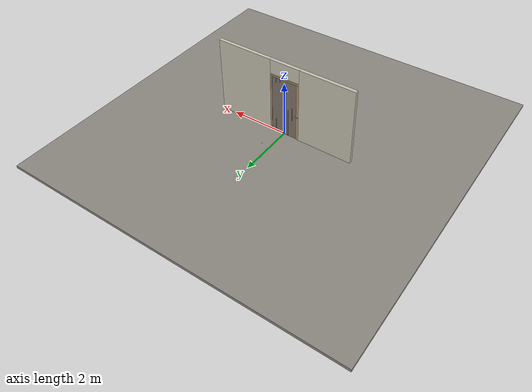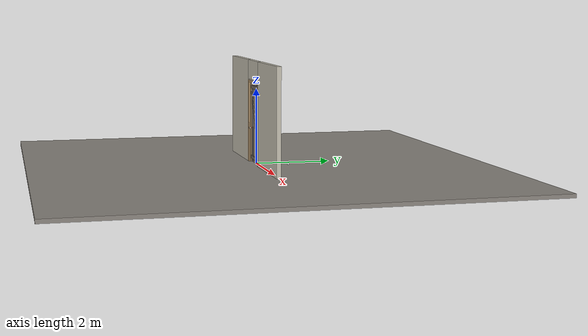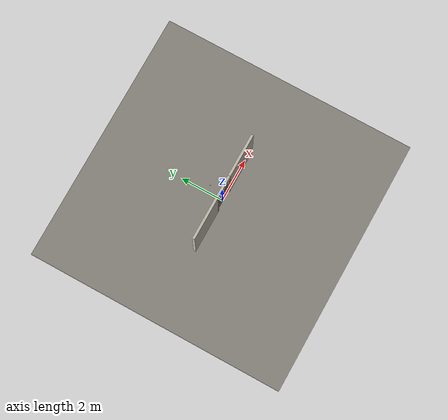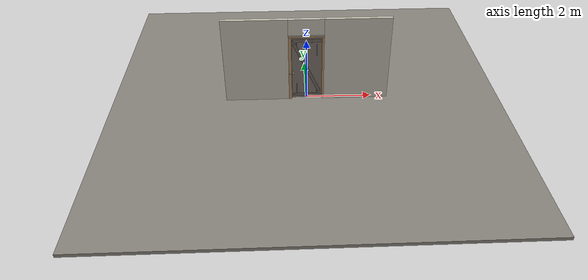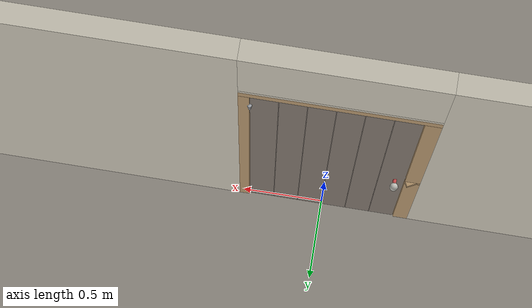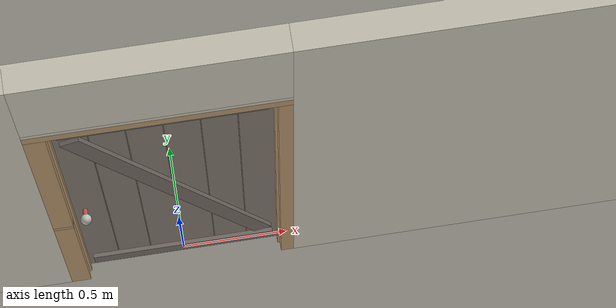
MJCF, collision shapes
<?xml version="1.0" ?>
<mujoco model="db0705_swing_single_full">
  <compiler angle="radian" meshdir="../../hardware" texturedir="../../textures" autolimits="true" inertiafromgeom="false"/>
  <option timestep="0.002" integrator="implicitfast" cone="elliptic" impratio="10" noslip_iterations="3">
    <flag multiccd="enable"/>
  </option>
  <size memory="16M"/>
  <default>
    <geom condim="4" solref="0.005 1" solimp="0.95 0.99 0.001"/>
    <joint solreflimit="0.005 1" solimplimit="0.95 0.99 0.001"/>
    <tendon solreflimit="0.005 1"/>
    <equality solref="0.002 1"/>
  </default>
  <visual>
    <headlight ambient="0.4 0.4 0.4" diffuse="0.7 0.7 0.7" specular="0.2 0.2 0.2"/>
    <quality shadowsize="4096"/>
    <map znear="0.01" zfar="60"/>
  </visual>
  <asset>
    <mesh name="knob_0ccd68d739" file="knob_0ccd68d739.obj"/>
    <mesh name="peephole_f829311a59" file="peephole_f829311a59.obj"/>
    <mesh name="strap_hinge_118b895b75" file="strap_hinge_118b895b75.obj"/>
    <material name="mat_floor" rgba="0.55 0.53 0.5 1" specular="0.2" shininess="0.15" reflectance="0"/>
    <material name="mat_wall" rgba="0.78 0.76 0.7 1" specular="0.2" shininess="0.1" reflectance="0"/>
    <material name="mat_leaf" rgba="0.5 0.46 0.425 1" specular="0.2" shininess="0.15" reflectance="0"/>
    <material name="mat_leaf_brace" rgba="0.45 0.414 0.383 1" specular="0.2" shininess="0.2" reflectance="0"/>
    <material name="mat_hinge" rgba="0.65 0.66 0.68 1" specular="0.74" shininess="0.5" reflectance="0.36"/>
    <material name="mat_op_hpl" rgba="0.75 0.75 0.72 1" specular="0.2" shininess="0.65" reflectance="0"/>
    <material name="mat_trim" rgba="0.85 0.66 0.3 1" specular="0.8" shininess="0.75" reflectance="0.4"/>
    <material name="mat_bolt" rgba="0.75 0.76 0.77 1" specular="0.8" shininess="0.65" reflectance="0.4"/>
    <material name="mat_frame" rgba="0.7 0.58 0.42 1" specular="0.2" shininess="0.5" reflectance="0"/>
    <material name="mat_peephole" rgba="0.85 0.66 0.3 1" specular="0.8" shininess="0.75" reflectance="0.4"/>
    <material name="mat_stop" rgba="0.9 0.9 0.92 1" specular="0.8" shininess="0.9" reflectance="0.4"/>
    <texture name="skybox" type="skybox" builtin="gradient" rgb1="0.6 0.7 0.85" rgb2="0.9 0.92 0.95" width="256" height="256"/>
  </asset>
  <worldbody>
    <light name="sun" pos="1.5 -2.5 4" dir="-0.3 0.5 -0.8" directional="true" diffuse="0.8 0.8 0.8" specular="0.3 0.3 0.3" castshadow="true"/>
    <light name="fill" pos="-1.5 2.5 3" dir="0.3 -0.5 -0.7" directional="true" diffuse="0.35 0.35 0.4" castshadow="false"/>
    <camera name="robot_view" pos="0 -2.670812 1.812087" xyaxes="1 0 0 0 0.26963 0.962964" fovy="52"/>
    <camera name="far_view" pos="0 2.604812 1.812087" xyaxes="-1 0 0 0 -0.26963 0.962964" fovy="52"/>
    <camera name="iso" pos="-2.004737 -2.248762 2.234138" xyaxes="0.741536 -0.670913 0 0.242917 0.268487 0.932151" fovy="46"/>
    <camera name="detail_handle" pos="-0.2215 -0.86375 1.194" xyaxes="0.97561 0.219512 0 -0.070934 0.315262 0.94635" fovy="38"/>
    <geom name="floor" type="box" size="6 6 0.05" pos="0 0 -0.05" material="mat_floor" group="0" contype="1" conaffinity="1" friction="0.8 0.005 0.0001" density="2400"/>
    <geom name="wall_left" type="box" size="0.97475 0.0575 1.3735" pos="-1.52525 -0.033 1.3735" material="mat_wall" group="0" contype="1" conaffinity="1" friction="0.6 0.005 0.0001" density="800"/>
    <geom name="wall_right" type="box" size="0.98975 0.0575 1.3735" pos="1.51025 -0.033 1.3735" material="mat_wall" group="0" contype="1" conaffinity="1" friction="0.6 0.005 0.0001" density="800"/>
    <geom name="wall_header" type="box" size="0.5355 0.0575 0.255" pos="-0.015 -0.033 2.492" material="mat_wall" group="0" contype="1" conaffinity="1" friction="0.6 0.005 0.0001" density="800"/>
    <geom name="hinge_pintle_0" type="cylinder" size="0.008 0.02" pos="0.4575 0.0245 0.133" material="mat_hinge" group="1" contype="0" conaffinity="0" density="7850"/>
    <geom name="hinge_pintle_1" type="cylinder" size="0.008 0.02" pos="0.4575 0.0245 1.967" material="mat_hinge" group="1" contype="0" conaffinity="0" density="7850"/>
    <geom name="jamb_hinge" type="box" size="0.03 0.0575 1.0735" pos="0.4905 -0.033 1.0735" material="mat_frame" group="0" contype="1" conaffinity="1" friction="0.6 0.005 0.0001" density="750"/>
    <geom name="strike_914_wall_n" type="box" size="0.045 0.042 0.015" pos="-0.5055 -0.0485 0.914" material="mat_frame" group="0" contype="1" conaffinity="1" friction="0.6 0.005 0.0001" density="750"/>
    <geom name="strike_914_wall_p" type="box" size="0.045 0.008 0.015" pos="-0.5055 0.0145 0.914" material="mat_frame" group="0" contype="1" conaffinity="1" friction="0.6 0.005 0.0001" density="750"/>
    <geom name="strike_914_ramp" type="box" size="0.045 0.016771 0.015" pos="-0.508249 0.017375 0.914" quat="0.973249 0 0 0.229753" material="mat_frame" group="0" contype="1" conaffinity="1" friction="0.12 0.005 0.0001" density="750"/>
    <geom name="strike_914_back" type="box" size="0.036 0.0065 0.015" pos="-0.5145 0 0.914" material="mat_frame" group="0" contype="1" conaffinity="1" friction="0.6 0.005 0.0001" density="750"/>
    <geom name="jamb_strike_0" type="box" size="0.045 0.0575 0.4495" pos="-0.5055 -0.033 0.4495" material="mat_frame" group="0" contype="1" conaffinity="1" friction="0.6 0.005 0.0001" density="750"/>
    <geom name="jamb_strike_1" type="box" size="0.045 0.0575 0.609" pos="-0.5055 -0.033 1.538" material="mat_frame" group="0" contype="1" conaffinity="1" friction="0.6 0.005 0.0001" density="750"/>
    <geom name="jamb_head" type="box" size="0.5355 0.0575 0.03" pos="-0.015 -0.033 2.177" material="mat_frame" group="0" contype="1" conaffinity="1" friction="0.6 0.005 0.0001" density="750"/>
    <geom name="head_stud" type="box" size="0.5355 0.0575 0.015" pos="-0.015 -0.033 2.222" material="mat_wall" group="0" contype="1" conaffinity="1" friction="0.6 0.005 0.0001" density="500"/>
    <geom name="stop_hinge" type="box" size="0.0055 0.016 1.0735" pos="0.455 -0.034 1.0735" material="mat_frame" group="0" contype="1" conaffinity="1" friction="0.6 0.005 0.0001" density="750"/>
    <geom name="stop_strike" type="box" size="0.0055 0.016 1.0735" pos="-0.455 -0.034 1.0735" material="mat_frame" group="0" contype="1" conaffinity="1" friction="0.6 0.005 0.0001" density="750"/>
    <geom name="stop_head" type="box" size="0.4605 0.016 0.0055" pos="0 -0.034 2.1415" material="mat_frame" group="0" contype="1" conaffinity="1" friction="0.6 0.005 0.0001" density="750"/>
    <geom name="floor_stop_dome" type="sphere" size="0.025" pos="0.342289 0.79307 0" material="mat_stop" group="0" contype="1" conaffinity="1" friction="0.6 0.005 0.0001" density="7000"/>
    <geom name="hinge_pintle_0_strap_0" type="box" size="0.0064 0.01775 0.016" pos="0.4575 -0.00075 0.133" material="mat_hinge" group="1" contype="0" conaffinity="0" density="7850"/>
    <geom name="hinge_pintle_1_strap_0" type="box" size="0.0064 0.01775 0.016" pos="0.4575 -0.00075 1.967" material="mat_hinge" group="1" contype="0" conaffinity="0" density="7850"/>
    <site name="approach_point" pos="0 -1.5 0" quat="1 0 0 0" size="0.05" rgba="0.2 0.9 0.2 0.5" group="4"/>
    <site name="goal_point" pos="0 1.5 0" quat="1 0 0 0" size="0.05" rgba="0.2 0.9 0.2 0.5" group="4"/>
    <site name="door_plane_center" pos="0 0 1.0735" quat="1 0 0 0" size="0.02" rgba="0.2 0.9 0.2 0.5" group="4"/>
    <body name="leaf" pos="0.4605 0 0">
      <inertial pos="-0.434555 0.00258 1.076182" mass="36.040767" quat="0.498298 0.501707 -0.498294 0.501689" diaginertia="2.48397716 15.771534112 18.245697934"/>
      <joint name="leaf_hinge" type="hinge" axis="0 0 -1" pos="-0.003 0.0245 0" limited="true" range="0 1.396263" damping="0.318966" frictionloss="5.239572" armature="0.02"/>
      <geom name="leaf_slab" type="box" size="0.457 0.0175 1.067" pos="-0.46 0 1.076" material="mat_leaf" group="0" contype="1" conaffinity="1" friction="0.45 0.005 0.0001" density="1"/>
      <geom name="leaf_plank_gap_1" type="box" size="0.002 0.0185 1.057" pos="-0.155333 0 1.076" material="mat_leaf_brace" group="1" contype="0" conaffinity="0" density="1"/>
      <geom name="leaf_plank_gap_2" type="box" size="0.002 0.0185 1.057" pos="-0.307667 0 1.076" material="mat_leaf_brace" group="1" contype="0" conaffinity="0" density="1"/>
      <geom name="leaf_plank_gap_3" type="box" size="0.002 0.0185 1.057" pos="-0.46 0 1.076" material="mat_leaf_brace" group="1" contype="0" conaffinity="0" density="1"/>
      <geom name="leaf_plank_gap_4" type="box" size="0.002 0.0185 1.057" pos="-0.612333 0 1.076" material="mat_leaf_brace" group="1" contype="0" conaffinity="0" density="1"/>
      <geom name="leaf_plank_gap_5" type="box" size="0.002 0.0185 1.057" pos="-0.764667 0 1.076" material="mat_leaf_brace" group="1" contype="0" conaffinity="0" density="1"/>
      <geom name="leaf_batten_12" type="box" size="0.427 0.01 0.045" pos="-0.46 -0.0275 0.129" material="mat_leaf_brace" group="1" contype="0" conaffinity="0" density="1"/>
      <geom name="leaf_batten_202" type="box" size="0.427 0.01 0.045" pos="-0.46 -0.0275 2.023" material="mat_leaf_brace" group="1" contype="0" conaffinity="0" density="1"/>
      <geom name="leaf_brace_z" type="box" size="0.920466 0.01 0.045" pos="-0.46 -0.0275 1.076" quat="0.841163 0 0.540782 0" material="mat_leaf_brace" group="1" contype="0" conaffinity="0" density="1"/>
      <geom name="hinge_strap_0" type="mesh" mesh="strap_hinge_118b895b75" pos="-0.003 0.0205 0.159" quat="0 0 0 1" material="mat_hinge" group="1" contype="0" conaffinity="0" density="7850"/>
      <geom name="hinge_strap_eye_0" type="cylinder" size="0.011 0.012" pos="-0.003 0.0245 0.159" material="mat_hinge" group="1" contype="0" conaffinity="0" density="7850"/>
      <geom name="hinge_strap_neck_0" type="box" size="0.012 0.006 0.006" pos="-0.003 0.0225 0.159" material="mat_hinge" group="1" contype="0" conaffinity="0" density="7850"/>
      <geom name="hinge_strap_1" type="mesh" mesh="strap_hinge_118b895b75" pos="-0.003 0.0205 1.993" quat="0 0 0 1" material="mat_hinge" group="1" contype="0" conaffinity="0" density="7850"/>
      <geom name="hinge_strap_eye_1" type="cylinder" size="0.011 0.012" pos="-0.003 0.0245 1.993" material="mat_hinge" group="1" contype="0" conaffinity="0" density="7850"/>
      <geom name="hinge_strap_neck_1" type="box" size="0.012 0.006 0.006" pos="-0.003 0.0225 1.993" material="mat_hinge" group="1" contype="0" conaffinity="0" density="7850"/>
      <geom name="leaf_latch_bolt_faceplate" type="box" size="0.0006 0.011 0.025" pos="-0.9164 0 0.914" material="mat_bolt" group="1" contype="0" conaffinity="0" density="8500"/>
      <geom name="peephole" type="mesh" mesh="peephole_f829311a59" pos="-0.46 -0.0175 1.509" quat="0 0 -0.707107 0.707107" material="mat_peephole" group="2" contype="0" conaffinity="0" density="8500"/>
      <site name="leaf_edge_mid" pos="-0.917 0 1.067" quat="1 0 0 0" size="0.02" rgba="0.2 0.9 0.2 0.5" group="4"/>
      <body name="leaf_handle" pos="-0.862 0 0.914">
        <inertial pos="0 0 0" mass="1.150081" quat="0.707107 0 0 -0.707107" diaginertia="0.000298658 0.003840959 0.003840959"/>
        <joint name="leaf_handle_hinge" type="hinge" axis="0 1 0" limited="true" range="0 0.85" damping="0.128366" frictionloss="0.032" stiffness="0.4" springref="-0.5" armature="0.01"/>
        <geom name="leaf_handle_spindle" type="cylinder" size="0.006 0.0255" pos="0 0 0" quat="0.707107 -0.707107 0 0" material="mat_op_hpl" group="1" contype="0" conaffinity="0" density="7850"/>
        <geom name="leaf_handle_knob_n" type="mesh" mesh="knob_0ccd68d739" pos="0 -0.0175 0" quat="0 0 -0.707107 0.707107" material="mat_op_hpl" group="1" contype="0" conaffinity="0" density="3000"/>
        <geom name="leaf_handle_knob_col_n" type="sphere" size="0.02475" pos="0 -0.06375 0" material="mat_op_hpl" group="0" contype="1" conaffinity="1" friction="0.9 0.01 0.0001" density="3000"/>
        <geom name="leaf_handle_knob_neck_n" type="cylinder" size="0.011 0.012" pos="0 -0.0295 0" quat="0.707107 -0.707107 0 0" material="mat_op_hpl" group="3" contype="1" conaffinity="1" rgba="0.8 0.3 0.3 0.25" friction="0.6 0.005 0.0001" density="3000"/>
        <geom name="leaf_handle_knob_p" type="mesh" mesh="knob_0ccd68d739" pos="0 0.0175 0" quat="0 0 0.707107 0.707107" material="mat_op_hpl" group="1" contype="0" conaffinity="0" density="3000"/>
        <geom name="leaf_handle_knob_col_p" type="sphere" size="0.02475" pos="0 0.06375 0" material="mat_op_hpl" group="0" contype="1" conaffinity="1" friction="0.9 0.01 0.0001" density="3000"/>
        <geom name="leaf_handle_knob_neck_p" type="cylinder" size="0.011 0.012" pos="0 0.0295 0" quat="0.707107 -0.707107 0 0" material="mat_op_hpl" group="3" contype="1" conaffinity="1" rgba="0.8 0.3 0.3 0.25" friction="0.6 0.005 0.0001" density="3000"/>
        <site name="leaf_handle_grip_n" pos="0 -0.06375 0" quat="1 0 0 0" size="0.012" rgba="0.2 0.9 0.2 0.5" group="4"/>
        <site name="leaf_handle_grip_p" pos="0 0.06375 0" quat="1 0 0 0" size="0.012" rgba="0.2 0.9 0.2 0.5" group="4"/>
      </body>
      <body name="leaf_latch_bolt" pos="-0.917 0 0.914">
        <inertial pos="0.008 0 0" mass="0.027149" quat="0 0 -0.707107 0.707107" diaginertia="0.000000328 0.000003943 0.000003943"/>
        <joint name="leaf_latch_bolt_slide" type="slide" axis="1 0 0" limited="true" range="0 0.014" damping="2" frictionloss="0.3" stiffness="400" springref="-0.01" armature="0.1"/>
        <geom name="leaf_latch_bolt_capsule" type="capsule" size="0.005 0.017" pos="0.008 0 0" quat="0.707107 0 -0.707107 0" material="mat_bolt" group="0" contype="1" conaffinity="1" friction="0.2 0.005 0.0001" density="8500"/>
      </body>
    </body>
  </worldbody>
  <tendon>
    <fixed name="leaf_latch_bolt_coupling" limited="true" range="0 10">
      <joint joint="leaf_latch_bolt_slide" coef="1"/>
      <joint joint="leaf_handle_hinge" coef="-0.018667"/>
    </fixed>
  </tendon>
  <sensor>
    <jointpos name="leaf_hinge_pos" joint="leaf_hinge"/>
    <jointvel name="leaf_hinge_vel" joint="leaf_hinge"/>
    <jointpos name="leaf_handle_hinge_pos" joint="leaf_handle_hinge"/>
    <jointvel name="leaf_handle_hinge_vel" joint="leaf_handle_hinge"/>
    <jointpos name="leaf_latch_bolt_slide_pos" joint="leaf_latch_bolt_slide"/>
    <jointvel name="leaf_latch_bolt_slide_vel" joint="leaf_latch_bolt_slide"/>
  </sensor>
</mujoco>
